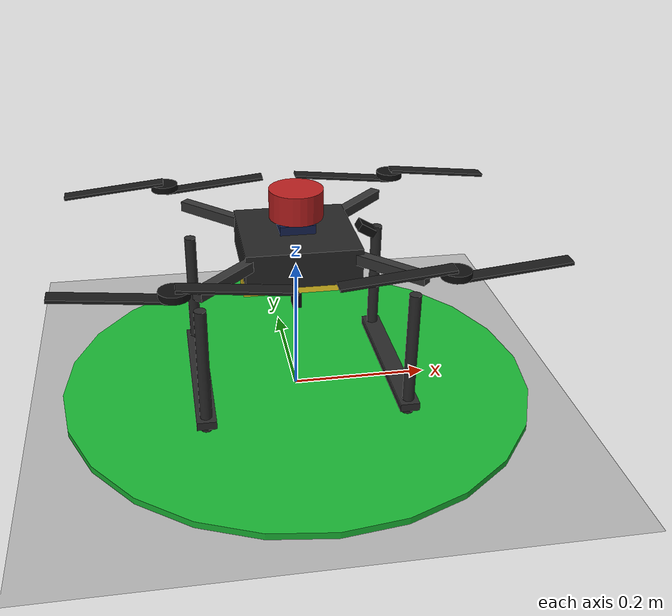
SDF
<?xml version="1.0" ?>
<sdf version="1.10">
  <world name="px4_x500_mission_test">
    <physics name="1ms" type="ignored">
      <max_step_size>0.001</max_step_size>
      <real_time_factor>1.0</real_time_factor>
    </physics>

    <plugin filename="gz-sim-physics-system" name="gz::sim::systems::Physics"/>
    <plugin filename="gz-sim-user-commands-system" name="gz::sim::systems::UserCommands"/>
    <plugin filename="gz-sim-scene-broadcaster-system" name="gz::sim::systems::SceneBroadcaster"/>
    <plugin filename="gz-sim-sensors-system" name="gz::sim::systems::Sensors">
      <render_engine>ogre2</render_engine>
    </plugin>

    <light type="directional" name="sun">
      <cast_shadows>true</cast_shadows>
      <pose>0 0 20 0 0 0</pose>
      <diffuse>0.9 0.9 0.9 1</diffuse>
      <specular>0.2 0.2 0.2 1</specular>
      <direction>-0.5 0.1 -0.9</direction>
    </light>

    <model name="ground_plane">
      <static>true</static>
      <link name="link">
        <collision name="collision">
          <geometry>
            <plane>
              <normal>0 0 1</normal>
              <size>120 120</size>
            </plane>
          </geometry>
        </collision>
        <visual name="visual">
          <geometry>
            <plane>
              <normal>0 0 1</normal>
              <size>120 120</size>
            </plane>
          </geometry>
          <material>
            <ambient>0.7 0.7 0.7 1</ambient>
            <diffuse>0.7 0.7 0.7 1</diffuse>
          </material>
        </visual>
      </link>
    </model>

    <model name="takeoff_marker">
      <static>true</static>
      <pose>0 0 0.005 0 0 0</pose>
      <link name="link">
        <visual name="visual">
          <geometry>
            <cylinder>
              <radius>0.35</radius>
              <length>0.01</length>
            </cylinder>
          </geometry>
          <material>
            <ambient>0.1 0.7 0.2 1</ambient>
            <diffuse>0.1 0.7 0.2 1</diffuse>
          </material>
        </visual>
      </link>
    </model>

    <include>
      <uri>file:///home/kunal/Desktop/drone/models/px4_x500_lidar_rgb</uri>
      <pose>0 0 0.23 0 0 0</pose>
    </include>
  </world>
</sdf>

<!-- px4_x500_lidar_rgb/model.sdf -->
<sdf version="1.10">
  <model name="px4_x500_lidar_rgb">
    <pose>0 0 0.25 0 0 0</pose>
    <static>false</static>
    <self_collide>false</self_collide>
    <allow_auto_disable>false</allow_auto_disable>

    <link name="base_link">
      <pose>0 0 0 0 0 0</pose>
      <inertial>
        <mass>1.20</mass>
        <inertia>
          <ixx>0.00281</ixx>
          <ixy>0.0</ixy>
          <ixz>0.0</ixz>
          <iyy>0.00281</iyy>
          <iyz>0.0</iyz>
          <izz>0.00512</izz>
        </inertia>
      </inertial>
      <collision name="base_collision">
        <geometry>
          <box>
            <size>0.16 0.16 0.05</size>
          </box>
        </geometry>
      </collision>
      <visual name="base_visual">
        <geometry>
          <box>
            <size>0.16 0.16 0.05</size>
          </box>
        </geometry>
        <material>
          <ambient>0.14 0.14 0.14 1</ambient>
          <diffuse>0.14 0.14 0.14 1</diffuse>
        </material>
      </visual>
      <visual name="arm_visual_1">
        <pose>0 0 0.01 0 0 0.785398</pose>
        <geometry>
          <box>
            <size>0.42 0.015 0.015</size>
          </box>
        </geometry>
        <material>
          <ambient>0.2 0.2 0.2 1</ambient>
          <diffuse>0.2 0.2 0.2 1</diffuse>
        </material>
      </visual>
      <visual name="arm_visual_2">
        <pose>0 0 0.01 0 0 -0.785398</pose>
        <geometry>
          <box>
            <size>0.42 0.015 0.015</size>
          </box>
        </geometry>
        <material>
          <ambient>0.2 0.2 0.2 1</ambient>
          <diffuse>0.2 0.2 0.2 1</diffuse>
        </material>
      </visual>
      <battery name="main_battery">
        <voltage>16.8</voltage>
      </battery>
    </link>

    <link name="battery_link">
      <pose>0 0 -0.045 0 0 0</pose>
      <inertial>
        <mass>0.622</mass>
        <inertia>
          <ixx>0.000169</ixx>
          <ixy>0.0</ixy>
          <ixz>0.0</ixz>
          <iyy>0.001367</iyy>
          <iyz>0.0</iyz>
          <izz>0.001454</izz>
        </inertia>
      </inertial>
      <collision name="battery_collision">
        <geometry>
          <box>
            <size>0.157 0.047 0.038</size>
          </box>
        </geometry>
      </collision>
      <visual name="battery_visual">
        <geometry>
          <box>
            <size>0.157 0.047 0.038</size>
          </box>
        </geometry>
        <material>
          <ambient>0.95 0.82 0.14 1</ambient>
          <diffuse>0.95 0.82 0.14 1</diffuse>
        </material>
      </visual>
    </link>

    <joint name="battery_joint" type="fixed">
      <parent>base_link</parent>
      <child>battery_link</child>
    </joint>

    <link name="px4_fcu_link">
      <pose>0 0 0.03 0 0 0</pose>
      <inertial>
        <mass>0.060</mass>
        <inertia>
          <ixx>9.375e-06</ixx>
          <ixy>0.0</ixy>
          <ixz>0.0</ixz>
          <iyy>1.3625e-05</iyy>
          <iyz>0.0</iyz>
          <izz>2.05e-05</izz>
        </inertia>
      </inertial>
      <collision name="px4_fcu_collision">
        <geometry>
          <box>
            <size>0.05 0.04 0.015</size>
          </box>
        </geometry>
      </collision>
      <visual name="px4_fcu_visual">
        <geometry>
          <box>
            <size>0.05 0.04 0.015</size>
          </box>
        </geometry>
        <material>
          <ambient>0.07 0.12 0.3 1</ambient>
          <diffuse>0.07 0.12 0.3 1</diffuse>
        </material>
      </visual>
      <sensor name="imu_sensor" type="imu">
        <always_on>1</always_on>
        <update_rate>250</update_rate>
        <topic>imu</topic>
      </sensor>
    </link>

    <joint name="px4_fcu_joint" type="fixed">
      <parent>base_link</parent>
      <child>px4_fcu_link</child>
    </joint>

    <link name="lidar_link">
      <pose>0 0 0.065 0 0 0</pose>
      <inertial>
        <mass>0.190</mass>
        <inertia>
          <ixx>8.744e-05</ixx>
          <ixy>0.0</ixy>
          <ixz>0.0</ixz>
          <iyy>8.744e-05</iyy>
          <iyz>0.0</iyz>
          <izz>1.372e-04</izz>
        </inertia>
      </inertial>
      <collision name="lidar_collision">
        <geometry>
          <cylinder>
            <radius>0.038</radius>
            <length>0.041</length>
          </cylinder>
        </geometry>
      </collision>
      <visual name="lidar_visual">
        <geometry>
          <cylinder>
            <radius>0.038</radius>
            <length>0.041</length>
          </cylinder>
        </geometry>
        <material>
          <ambient>0.72 0.12 0.12 1</ambient>
          <diffuse>0.72 0.12 0.12 1</diffuse>
        </material>
      </visual>
      <sensor name="lidar_2d_sensor" type="gpu_lidar">
        <topic>lidar_2d</topic>
        <always_on>1</always_on>
        <update_rate>10</update_rate>
        <lidar>
          <scan>
            <horizontal>
              <samples>720</samples>
              <resolution>1</resolution>
              <min_angle>-2.35619</min_angle>
              <max_angle>2.35619</max_angle>
            </horizontal>
            <vertical>
              <samples>1</samples>
              <resolution>1</resolution>
              <min_angle>0</min_angle>
              <max_angle>0</max_angle>
            </vertical>
          </scan>
          <range>
            <min>0.1</min>
            <max>30.0</max>
            <resolution>0.01</resolution>
          </range>
        </lidar>
        <visualize>true</visualize>
      </sensor>
    </link>

    <joint name="lidar_joint" type="fixed">
      <parent>base_link</parent>
      <child>lidar_link</child>
    </joint>

    <link name="front_rgb_camera_link">
      <pose>0.10 0.0 0.020 0 0.523599 0</pose>
      <inertial>
        <mass>0.004</mass>
        <inertia>
          <ixx>2.37e-07</ixx>
          <ixy>0.0</ixy>
          <ixz>0.0</ixz>
          <iyy>3.53e-07</iyy>
          <iyz>0.0</iyz>
          <izz>4.17e-07</izz>
        </inertia>
      </inertial>
      <collision name="front_rgb_camera_collision">
        <geometry>
          <box>
            <size>0.025 0.024 0.012</size>
          </box>
        </geometry>
      </collision>
      <visual name="front_rgb_camera_visual">
        <geometry>
          <box>
            <size>0.025 0.024 0.012</size>
          </box>
        </geometry>
        <material>
          <ambient>0.05 0.05 0.05 1</ambient>
          <diffuse>0.05 0.05 0.05 1</diffuse>
        </material>
      </visual>
      <sensor name="front_rgb_camera" type="camera">
        <always_on>1</always_on>
        <update_rate>30</update_rate>
        <topic>front_rgb_camera/image_raw</topic>
        <camera>
          <horizontal_fov>1.15192</horizontal_fov>
          <image>
            <width>1280</width>
            <height>720</height>
            <format>R8G8B8</format>
          </image>
          <clip>
            <near>0.05</near>
            <far>120</far>
          </clip>
        </camera>
        <visualize>true</visualize>
      </sensor>
    </link>

    <joint name="front_rgb_camera_joint" type="fixed">
      <parent>base_link</parent>
      <child>front_rgb_camera_link</child>
    </joint>

    <link name="down_rgb_camera_link">
      <pose>0.0 0.0 -0.082 0 1.570796 0</pose>
      <inertial>
        <mass>0.004</mass>
        <inertia>
          <ixx>2.37e-07</ixx>
          <ixy>0.0</ixy>
          <ixz>0.0</ixz>
          <iyy>3.53e-07</iyy>
          <iyz>0.0</iyz>
          <izz>4.17e-07</izz>
        </inertia>
      </inertial>
      <collision name="down_rgb_camera_collision">
        <geometry>
          <box>
            <size>0.025 0.024 0.012</size>
          </box>
        </geometry>
      </collision>
      <visual name="down_rgb_camera_visual">
        <geometry>
          <box>
            <size>0.025 0.024 0.012</size>
          </box>
        </geometry>
        <material>
          <ambient>0.05 0.05 0.05 1</ambient>
          <diffuse>0.05 0.05 0.05 1</diffuse>
        </material>
      </visual>
      <sensor name="down_rgb_camera" type="camera">
        <always_on>1</always_on>
        <update_rate>30</update_rate>
        <topic>down_rgb_camera/image_raw</topic>
        <camera>
          <horizontal_fov>1.15192</horizontal_fov>
          <image>
            <width>1280</width>
            <height>720</height>
            <format>R8G8B8</format>
          </image>
          <clip>
            <near>0.05</near>
            <far>120</far>
          </clip>
        </camera>
        <visualize>true</visualize>
      </sensor>
    </link>

    <joint name="down_rgb_camera_joint" type="fixed">
      <parent>base_link</parent>
      <child>down_rgb_camera_link</child>
    </joint>

    <link name="landing_leg_front_left">
      <pose>0.145 0.115 -0.125 0 0 0</pose>
      <inertial>
        <mass>0.024</mass>
        <inertia>
          <ixx>8.6e-05</ixx>
          <ixy>0.0</ixy>
          <ixz>0.0</ixz>
          <iyy>8.6e-05</iyy>
          <iyz>0.0</iyz>
          <izz>1.2e-06</izz>
        </inertia>
      </inertial>
      <collision name="landing_leg_front_left_collision">
        <geometry>
          <cylinder>
            <radius>0.0085</radius>
            <length>0.19</length>
          </cylinder>
        </geometry>
      </collision>
      <visual name="landing_leg_front_left_visual">
        <geometry>
          <cylinder>
            <radius>0.0085</radius>
            <length>0.19</length>
          </cylinder>
        </geometry>
        <material>
          <ambient>0.16 0.16 0.16 1</ambient>
          <diffuse>0.16 0.16 0.16 1</diffuse>
        </material>
      </visual>
    </link>

    <joint name="landing_leg_front_left_joint" type="fixed">
      <parent>base_link</parent>
      <child>landing_leg_front_left</child>
    </joint>

    <link name="landing_leg_front_right">
      <pose>0.145 -0.115 -0.125 0 0 0</pose>
      <inertial>
        <mass>0.024</mass>
        <inertia>
          <ixx>8.6e-05</ixx>
          <ixy>0.0</ixy>
          <ixz>0.0</ixz>
          <iyy>8.6e-05</iyy>
          <iyz>0.0</iyz>
          <izz>1.2e-06</izz>
        </inertia>
      </inertial>
      <collision name="landing_leg_front_right_collision">
        <geometry>
          <cylinder>
            <radius>0.0085</radius>
            <length>0.19</length>
          </cylinder>
        </geometry>
      </collision>
      <visual name="landing_leg_front_right_visual">
        <geometry>
          <cylinder>
            <radius>0.0085</radius>
            <length>0.19</length>
          </cylinder>
        </geometry>
        <material>
          <ambient>0.16 0.16 0.16 1</ambient>
          <diffuse>0.16 0.16 0.16 1</diffuse>
        </material>
      </visual>
    </link>

    <joint name="landing_leg_front_right_joint" type="fixed">
      <parent>base_link</parent>
      <child>landing_leg_front_right</child>
    </joint>

    <link name="landing_leg_rear_left">
      <pose>-0.145 0.115 -0.125 0 0 0</pose>
      <inertial>
        <mass>0.024</mass>
        <inertia>
          <ixx>8.6e-05</ixx>
          <ixy>0.0</ixy>
          <ixz>0.0</ixz>
          <iyy>8.6e-05</iyy>
          <iyz>0.0</iyz>
          <izz>1.2e-06</izz>
        </inertia>
      </inertial>
      <collision name="landing_leg_rear_left_collision">
        <geometry>
          <cylinder>
            <radius>0.0085</radius>
            <length>0.19</length>
          </cylinder>
        </geometry>
      </collision>
      <visual name="landing_leg_rear_left_visual">
        <geometry>
          <cylinder>
            <radius>0.0085</radius>
            <length>0.19</length>
          </cylinder>
        </geometry>
        <material>
          <ambient>0.16 0.16 0.16 1</ambient>
          <diffuse>0.16 0.16 0.16 1</diffuse>
        </material>
      </visual>
    </link>

    <joint name="landing_leg_rear_left_joint" type="fixed">
      <parent>base_link</parent>
      <child>landing_leg_rear_left</child>
    </joint>

    <link name="landing_leg_rear_right">
      <pose>-0.145 -0.115 -0.125 0 0 0</pose>
      <inertial>
        <mass>0.024</mass>
        <inertia>
          <ixx>8.6e-05</ixx>
          <ixy>0.0</ixy>
          <ixz>0.0</ixz>
          <iyy>8.6e-05</iyy>
          <iyz>0.0</iyz>
          <izz>1.2e-06</izz>
        </inertia>
      </inertial>
      <collision name="landing_leg_rear_right_collision">
        <geometry>
          <cylinder>
            <radius>0.0085</radius>
            <length>0.19</length>
          </cylinder>
        </geometry>
      </collision>
      <visual name="landing_leg_rear_right_visual">
        <geometry>
          <cylinder>
            <radius>0.0085</radius>
            <length>0.19</length>
          </cylinder>
        </geometry>
        <material>
          <ambient>0.16 0.16 0.16 1</ambient>
          <diffuse>0.16 0.16 0.16 1</diffuse>
        </material>
      </visual>
    </link>

    <joint name="landing_leg_rear_right_joint" type="fixed">
      <parent>base_link</parent>
      <child>landing_leg_rear_right</child>
    </joint>

    <link name="landing_pair_front_skid">
      <pose>0.145 0.0 -0.205 0 0 0</pose>
      <inertial>
        <mass>0.028</mass>
        <inertia>
          <ixx>1.58e-04</ixx>
          <ixy>0.0</ixy>
          <ixz>0.0</ixz>
          <iyy>2.17e-06</iyy>
          <iyz>0.0</iyz>
          <izz>1.60e-04</izz>
        </inertia>
      </inertial>
      <collision name="landing_pair_front_skid_collision">
        <geometry>
          <box>
            <size>0.028 0.26 0.012</size>
          </box>
        </geometry>
      </collision>
      <visual name="landing_pair_front_skid_visual">
        <geometry>
          <box>
            <size>0.028 0.26 0.012</size>
          </box>
        </geometry>
        <material>
          <ambient>0.16 0.16 0.16 1</ambient>
          <diffuse>0.16 0.16 0.16 1</diffuse>
        </material>
      </visual>
    </link>

    <joint name="landing_pair_front_skid_joint" type="fixed">
      <parent>base_link</parent>
      <child>landing_pair_front_skid</child>
    </joint>

    <link name="landing_pair_rear_skid">
      <pose>-0.145 0.0 -0.205 0 0 0</pose>
      <inertial>
        <mass>0.028</mass>
        <inertia>
          <ixx>1.58e-04</ixx>
          <ixy>0.0</ixy>
          <ixz>0.0</ixz>
          <iyy>2.17e-06</iyy>
          <iyz>0.0</iyz>
          <izz>1.60e-04</izz>
        </inertia>
      </inertial>
      <collision name="landing_pair_rear_skid_collision">
        <geometry>
          <box>
            <size>0.028 0.26 0.012</size>
          </box>
        </geometry>
      </collision>
      <visual name="landing_pair_rear_skid_visual">
        <geometry>
          <box>
            <size>0.028 0.26 0.012</size>
          </box>
        </geometry>
        <material>
          <ambient>0.16 0.16 0.16 1</ambient>
          <diffuse>0.16 0.16 0.16 1</diffuse>
        </material>
      </visual>
    </link>

    <joint name="landing_pair_rear_skid_joint" type="fixed">
      <parent>base_link</parent>
      <child>landing_pair_rear_skid</child>
    </joint>

    <link name="rotor_0">
      <pose>0.1768 0.1768 0.030 0 0 0</pose>
      <inertial>
        <mass>0.030</mass>
        <inertia>
          <ixx>0.0001175</ixx>
          <ixy>0.0</ixy>
          <ixz>0.0</ixz>
          <iyy>0.0001175</iyy>
          <iyz>0.0</iyz>
          <izz>0.0002344</izz>
        </inertia>
      </inertial>
      <collision name="rotor_0_collision">
        <geometry>
          <cylinder>
            <radius>0.1524</radius>
            <length>0.008</length>
          </cylinder>
        </geometry>
      </collision>
      <visual name="rotor_0_hub_visual">
        <geometry>
          <cylinder>
            <radius>0.020</radius>
            <length>0.010</length>
          </cylinder>
        </geometry>
        <material>
          <ambient>0.06 0.06 0.06 1</ambient>
          <diffuse>0.06 0.06 0.06 1</diffuse>
        </material>
      </visual>
      <visual name="rotor_0_blade_a_visual">
        <pose>0.0762 0.0 0.0 0 0.10 0</pose>
        <geometry>
          <box>
            <size>0.150 0.022 0.004</size>
          </box>
        </geometry>
        <material>
          <ambient>0.10 0.10 0.10 1</ambient>
          <diffuse>0.10 0.10 0.10 1</diffuse>
        </material>
      </visual>
      <visual name="rotor_0_blade_b_visual">
        <pose>-0.0762 0.0 0.0 0 0.10 0</pose>
        <geometry>
          <box>
            <size>0.150 0.022 0.004</size>
          </box>
        </geometry>
        <material>
          <ambient>0.10 0.10 0.10 1</ambient>
          <diffuse>0.10 0.10 0.10 1</diffuse>
        </material>
      </visual>
    </link>

    <joint name="rotor_0_joint" type="revolute">
      <parent>base_link</parent>
      <child>rotor_0</child>
      <axis>
        <xyz>0 0 1</xyz>
        <limit>
          <lower>-1e16</lower>
          <upper>1e16</upper>
        </limit>
      </axis>
    </joint>

    <link name="rotor_1">
      <pose>-0.1768 0.1768 0.030 0 0 0</pose>
      <inertial>
        <mass>0.030</mass>
        <inertia>
          <ixx>0.0001175</ixx>
          <ixy>0.0</ixy>
          <ixz>0.0</ixz>
          <iyy>0.0001175</iyy>
          <iyz>0.0</iyz>
          <izz>0.0002344</izz>
        </inertia>
      </inertial>
      <collision name="rotor_1_collision">
        <geometry>
          <cylinder>
            <radius>0.1524</radius>
            <length>0.008</length>
          </cylinder>
        </geometry>
      </collision>
      <visual name="rotor_1_hub_visual">
        <geometry>
          <cylinder>
            <radius>0.020</radius>
            <length>0.010</length>
          </cylinder>
        </geometry>
        <material>
          <ambient>0.06 0.06 0.06 1</ambient>
          <diffuse>0.06 0.06 0.06 1</diffuse>
        </material>
      </visual>
      <visual name="rotor_1_blade_a_visual">
        <pose>0.0762 0.0 0.0 0 -0.10 0</pose>
        <geometry>
          <box>
            <size>0.150 0.022 0.004</size>
          </box>
        </geometry>
        <material>
          <ambient>0.10 0.10 0.10 1</ambient>
          <diffuse>0.10 0.10 0.10 1</diffuse>
        </material>
      </visual>
      <visual name="rotor_1_blade_b_visual">
        <pose>-0.0762 0.0 0.0 0 -0.10 0</pose>
        <geometry>
          <box>
            <size>0.150 0.022 0.004</size>
          </box>
        </geometry>
        <material>
          <ambient>0.10 0.10 0.10 1</ambient>
          <diffuse>0.10 0.10 0.10 1</diffuse>
        </material>
      </visual>
    </link>

    <joint name="rotor_1_joint" type="revolute">
      <parent>base_link</parent>
      <child>rotor_1</child>
      <axis>
        <xyz>0 0 1</xyz>
        <limit>
          <lower>-1e16</lower>
          <upper>1e16</upper>
        </limit>
      </axis>
    </joint>

    <link name="rotor_2">
      <pose>-0.1768 -0.1768 0.030 0 0 0</pose>
      <inertial>
        <mass>0.030</mass>
        <inertia>
          <ixx>0.0001175</ixx>
          <ixy>0.0</ixy>
          <ixz>0.0</ixz>
          <iyy>0.0001175</iyy>
          <iyz>0.0</iyz>
          <izz>0.0002344</izz>
        </inertia>
      </inertial>
      <collision name="rotor_2_collision">
        <geometry>
          <cylinder>
            <radius>0.1524</radius>
            <length>0.008</length>
          </cylinder>
        </geometry>
      </collision>
      <visual name="rotor_2_hub_visual">
        <geometry>
          <cylinder>
            <radius>0.020</radius>
            <length>0.010</length>
          </cylinder>
        </geometry>
        <material>
          <ambient>0.06 0.06 0.06 1</ambient>
          <diffuse>0.06 0.06 0.06 1</diffuse>
        </material>
      </visual>
      <visual name="rotor_2_blade_a_visual">
        <pose>0.0762 0.0 0.0 0 0.10 0</pose>
        <geometry>
          <box>
            <size>0.150 0.022 0.004</size>
          </box>
        </geometry>
        <material>
          <ambient>0.10 0.10 0.10 1</ambient>
          <diffuse>0.10 0.10 0.10 1</diffuse>
        </material>
      </visual>
      <visual name="rotor_2_blade_b_visual">
        <pose>-0.0762 0.0 0.0 0 0.10 0</pose>
        <geometry>
          <box>
            <size>0.150 0.022 0.004</size>
          </box>
        </geometry>
        <material>
          <ambient>0.10 0.10 0.10 1</ambient>
          <diffuse>0.10 0.10 0.10 1</diffuse>
        </material>
      </visual>
    </link>

    <joint name="rotor_2_joint" type="revolute">
      <parent>base_link</parent>
      <child>rotor_2</child>
      <axis>
        <xyz>0 0 1</xyz>
        <limit>
          <lower>-1e16</lower>
          <upper>1e16</upper>
        </limit>
      </axis>
    </joint>

    <link name="rotor_3">
      <pose>0.1768 -0.1768 0.030 0 0 0</pose>
      <inertial>
        <mass>0.030</mass>
        <inertia>
          <ixx>0.0001175</ixx>
          <ixy>0.0</ixy>
          <ixz>0.0</ixz>
          <iyy>0.0001175</iyy>
          <iyz>0.0</iyz>
          <izz>0.0002344</izz>
        </inertia>
      </inertial>
      <collision name="rotor_3_collision">
        <geometry>
          <cylinder>
            <radius>0.1524</radius>
            <length>0.008</length>
          </cylinder>
        </geometry>
      </collision>
      <visual name="rotor_3_hub_visual">
        <geometry>
          <cylinder>
            <radius>0.020</radius>
            <length>0.010</length>
          </cylinder>
        </geometry>
        <material>
          <ambient>0.06 0.06 0.06 1</ambient>
          <diffuse>0.06 0.06 0.06 1</diffuse>
        </material>
      </visual>
      <visual name="rotor_3_blade_a_visual">
        <pose>0.0762 0.0 0.0 0 -0.10 0</pose>
        <geometry>
          <box>
            <size>0.150 0.022 0.004</size>
          </box>
        </geometry>
        <material>
          <ambient>0.10 0.10 0.10 1</ambient>
          <diffuse>0.10 0.10 0.10 1</diffuse>
        </material>
      </visual>
      <visual name="rotor_3_blade_b_visual">
        <pose>-0.0762 0.0 0.0 0 -0.10 0</pose>
        <geometry>
          <box>
            <size>0.150 0.022 0.004</size>
          </box>
        </geometry>
        <material>
          <ambient>0.10 0.10 0.10 1</ambient>
          <diffuse>0.10 0.10 0.10 1</diffuse>
        </material>
      </visual>
    </link>

    <joint name="rotor_3_joint" type="revolute">
      <parent>base_link</parent>
      <child>rotor_3</child>
      <axis>
        <xyz>0 0 1</xyz>
        <limit>
          <lower>-1e16</lower>
          <upper>1e16</upper>
        </limit>
      </axis>
    </joint>

    <!-- PX4-compatible motor command endpoint (via ESC relay): /model/px4_x500_lidar_rgb/command/motor_speed_faulted -->
    <plugin filename="gz-sim-multicopter-motor-model-system" name="gz::sim::systems::MulticopterMotorModel">
      <robotNamespace>model/px4_x500_lidar_rgb</robotNamespace>
      <jointName>rotor_0_joint</jointName>
      <linkName>rotor_0</linkName>
      <turningDirection>ccw</turningDirection>
      <timeConstantUp>0.0125</timeConstantUp>
      <timeConstantDown>0.025</timeConstantDown>
      <maxRotVelocity>1000.0</maxRotVelocity>
      <motorConstant>1.269e-05</motorConstant>
      <momentConstant>0.016754</momentConstant>
      <commandSubTopic>command/motor_speed_faulted</commandSubTopic>
      <actuator_number>0</actuator_number>
      <rotorDragCoefficient>2.0673e-04</rotorDragCoefficient>
      <rollingMomentCoefficient>1e-06</rollingMomentCoefficient>
      <motorSpeedPubTopic>motor_speed/0</motorSpeedPubTopic>
      <rotorVelocitySlowdownSim>10</rotorVelocitySlowdownSim>
      <motorType>velocity</motorType>
    </plugin>
    <plugin filename="gz-sim-multicopter-motor-model-system" name="gz::sim::systems::MulticopterMotorModel">
      <robotNamespace>model/px4_x500_lidar_rgb</robotNamespace>
      <jointName>rotor_1_joint</jointName>
      <linkName>rotor_1</linkName>
      <turningDirection>cw</turningDirection>
      <timeConstantUp>0.0125</timeConstantUp>
      <timeConstantDown>0.025</timeConstantDown>
      <maxRotVelocity>1000.0</maxRotVelocity>
      <motorConstant>1.269e-05</motorConstant>
      <momentConstant>0.016754</momentConstant>
      <commandSubTopic>command/motor_speed_faulted</commandSubTopic>
      <actuator_number>1</actuator_number>
      <rotorDragCoefficient>2.0673e-04</rotorDragCoefficient>
      <rollingMomentCoefficient>1e-06</rollingMomentCoefficient>
      <motorSpeedPubTopic>motor_speed/1</motorSpeedPubTopic>
      <rotorVelocitySlowdownSim>10</rotorVelocitySlowdownSim>
      <motorType>velocity</motorType>
    </plugin>
    <plugin filename="gz-sim-multicopter-motor-model-system" name="gz::sim::systems::MulticopterMotorModel">
      <robotNamespace>model/px4_x500_lidar_rgb</robotNamespace>
      <jointName>rotor_2_joint</jointName>
      <linkName>rotor_2</linkName>
      <turningDirection>ccw</turningDirection>
      <timeConstantUp>0.0125</timeConstantUp>
      <timeConstantDown>0.025</timeConstantDown>
      <maxRotVelocity>1000.0</maxRotVelocity>
      <motorConstant>1.269e-05</motorConstant>
      <momentConstant>0.016754</momentConstant>
      <commandSubTopic>command/motor_speed_faulted</commandSubTopic>
      <actuator_number>2</actuator_number>
      <rotorDragCoefficient>2.0673e-04</rotorDragCoefficient>
      <rollingMomentCoefficient>1e-06</rollingMomentCoefficient>
      <motorSpeedPubTopic>motor_speed/2</motorSpeedPubTopic>
      <rotorVelocitySlowdownSim>10</rotorVelocitySlowdownSim>
      <motorType>velocity</motorType>
    </plugin>
    <plugin filename="gz-sim-multicopter-motor-model-system" name="gz::sim::systems::MulticopterMotorModel">
      <robotNamespace>model/px4_x500_lidar_rgb</robotNamespace>
      <jointName>rotor_3_joint</jointName>
      <linkName>rotor_3</linkName>
      <turningDirection>cw</turningDirection>
      <timeConstantUp>0.0125</timeConstantUp>
      <timeConstantDown>0.025</timeConstantDown>
      <maxRotVelocity>1000.0</maxRotVelocity>
      <motorConstant>1.269e-05</motorConstant>
      <momentConstant>0.016754</momentConstant>
      <commandSubTopic>command/motor_speed_faulted</commandSubTopic>
      <actuator_number>3</actuator_number>
      <rotorDragCoefficient>2.0673e-04</rotorDragCoefficient>
      <rollingMomentCoefficient>1e-06</rollingMomentCoefficient>
      <motorSpeedPubTopic>motor_speed/3</motorSpeedPubTopic>
      <rotorVelocitySlowdownSim>10</rotorVelocitySlowdownSim>
      <motorType>velocity</motorType>
    </plugin>

    <plugin filename="gz-sim-multicopter-control-system" name="gz::sim::systems::MulticopterVelocityControl">
      <robotNamespace>model/px4_x500_lidar_rgb</robotNamespace>
      <commandSubTopic>gazebo/command/twist</commandSubTopic>
      <enableSubTopic>enable</enableSubTopic>
      <comLinkName>base_link</comLinkName>
      <velocityGain>6 6 10</velocityGain>
      <attitudeGain>4 4 2</attitudeGain>
      <angularRateGain>0.7 0.7 0.7</angularRateGain>
      <maximumLinearAcceleration>1 1 2</maximumLinearAcceleration>
      <maximumLinearVelocity>5 5 5</maximumLinearVelocity>
      <maximumAngularVelocity>3 3 3</maximumAngularVelocity>

      <rotorConfiguration>
        <rotor>
          <jointName>rotor_0_joint</jointName>
          <forceConstant>1.269e-05</forceConstant>
          <momentConstant>1.6754e-2</momentConstant>
          <direction>1</direction>
        </rotor>
        <rotor>
          <jointName>rotor_1_joint</jointName>
          <forceConstant>1.269e-05</forceConstant>
          <momentConstant>1.6754e-2</momentConstant>
          <direction>-1</direction>
        </rotor>
        <rotor>
          <jointName>rotor_2_joint</jointName>
          <forceConstant>1.269e-05</forceConstant>
          <momentConstant>1.6754e-2</momentConstant>
          <direction>1</direction>
        </rotor>
        <rotor>
          <jointName>rotor_3_joint</jointName>
          <forceConstant>1.269e-05</forceConstant>
          <momentConstant>1.6754e-2</momentConstant>
          <direction>-1</direction>
        </rotor>
      </rotorConfiguration>
    </plugin>

    <plugin filename="gz-sim-linearbatteryplugin-system" name="gz::sim::systems::LinearBatteryPlugin">
      <battery_name>main_battery</battery_name>
      <voltage>16.8</voltage>
      <open_circuit_voltage_constant_coef>16.8</open_circuit_voltage_constant_coef>
      <open_circuit_voltage_linear_coef>-8.0</open_circuit_voltage_linear_coef>
      <initial_charge>6.2</initial_charge>
      <capacity>6.2</capacity>
      <resistance>0.04</resistance>
      <smooth_current_tau>1.95</smooth_current_tau>
      <power_load>15.0</power_load>
      <start_on_motion>true</start_on_motion>
    </plugin>

    <plugin filename="gz-sim-joint-state-publisher-system" name="gz::sim::systems::JointStatePublisher"/>
    <plugin filename="gz-sim-odometry-publisher-system" name="gz::sim::systems::OdometryPublisher">
      <dimensions>3</dimensions>
    </plugin>
  </model>
</sdf>
